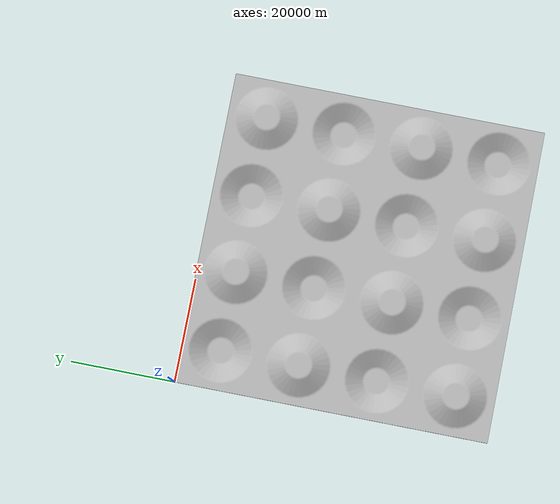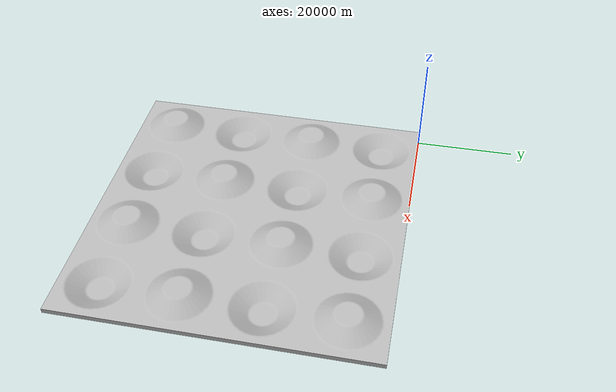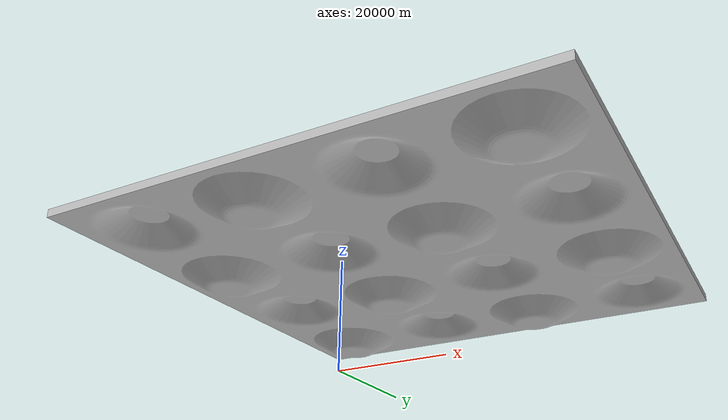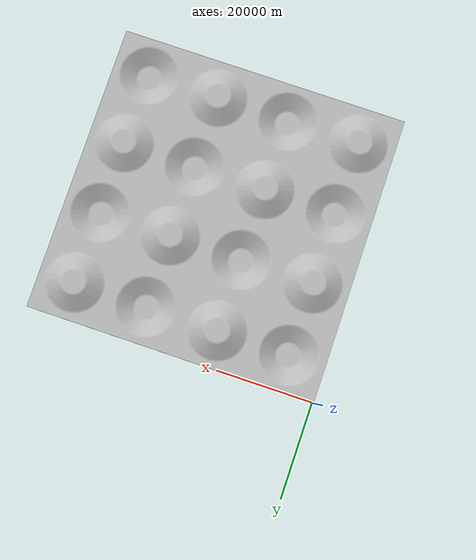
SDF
<?xml version="1.0" ?>
<sdf version="1.4">
  <model name="terrain2">
    <pose>-50 50 -8.2 1.57 0 0</pose>
    <static>true</static>
    <link name="link">
      <collision name="collision">
        <geometry>
          <mesh>
            <uri>model://terrain2/meshes/terrain2.dae</uri>
          </mesh>
        </geometry>
      </collision>
      <visual name="visual">
        <cast_shadows>false</cast_shadows>
        <geometry>
          <mesh>
            <uri>model://terrain2/meshes/terrain2.dae</uri>
          </mesh>
        </geometry>
        <material>
          <script>
            <uri>model://terrain2/materials/scripts</uri>
            <uri>model://terrain2/materials/textures</uri>
            <name>vrc/forest</name>
          </script>
        </material>
      </visual>
    </link>
  </model>
</sdf>
